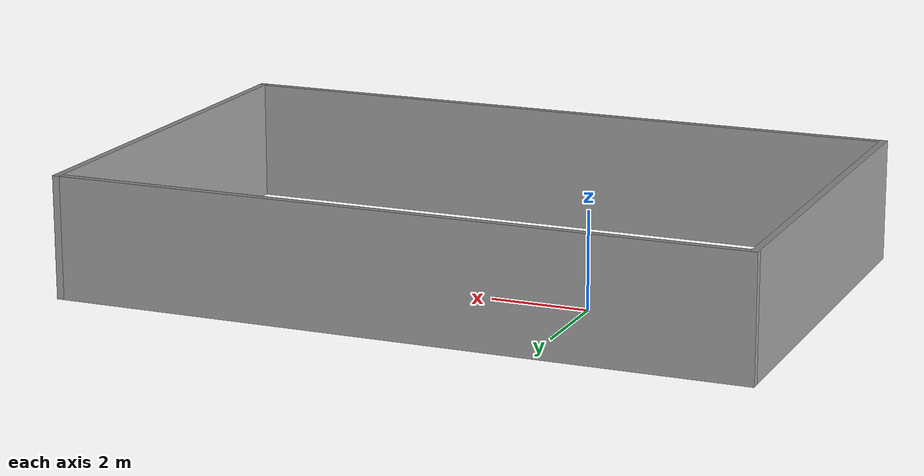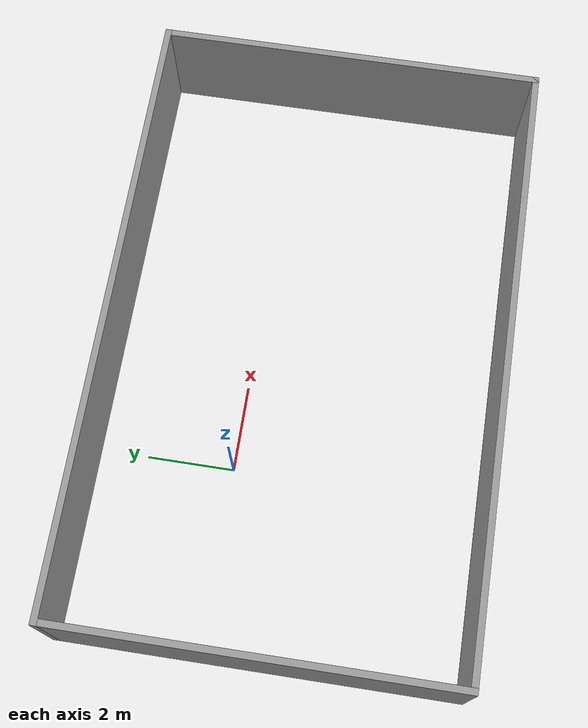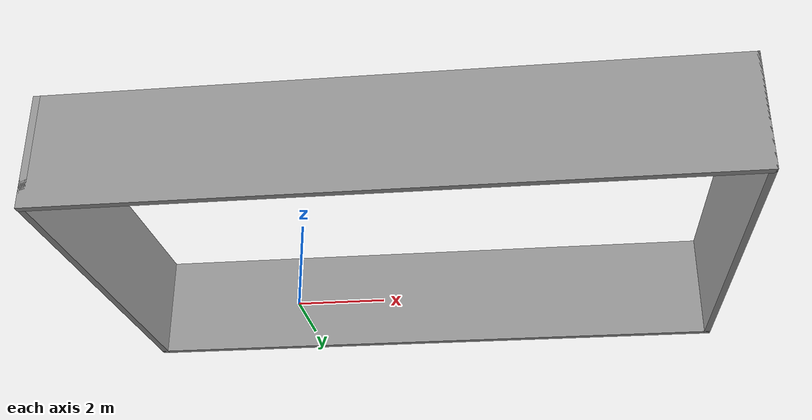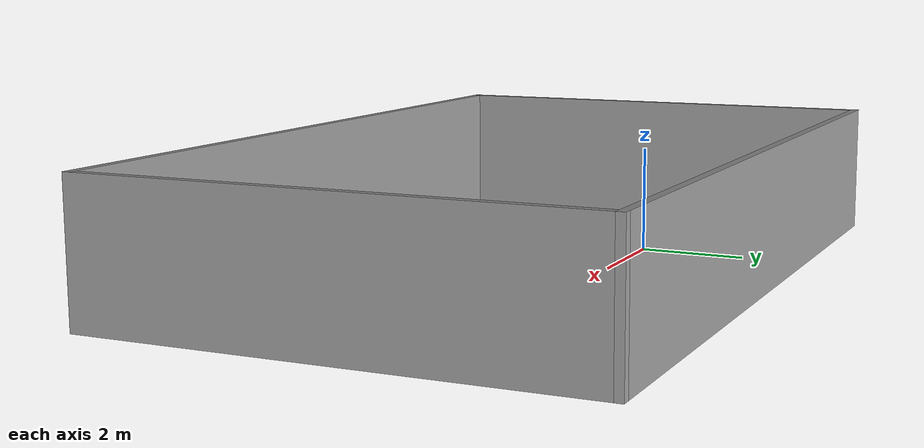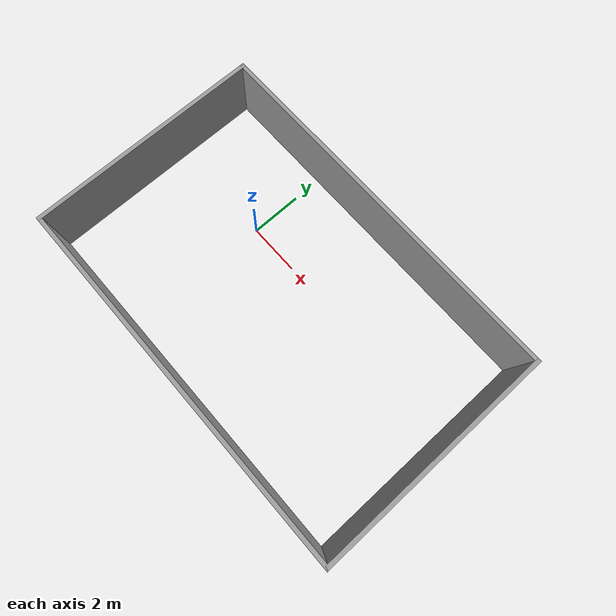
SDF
<?xml version='1.0'?>
<sdf version='1.7'>
  <model name='try1'>
    <pose>2.76609 -1.24978 0 0 -0 0</pose>
    <link name='Wall_10'>
      <collision name='Wall_10_Collision'>
        <geometry>
          <box>
            <size>14.25 0.15 2.5</size>
          </box>
        </geometry>
        <pose>0 0 1.25 0 -0 0</pose>
      </collision>
      <visual name='Wall_10_Visual'>
        <pose>0 0 1.25 0 -0 0</pose>
        <geometry>
          <box>
            <size>14.25 0.15 2.5</size>
          </box>
        </geometry>
        <material>
          <script>
            <uri>file://media/materials/scripts/gazebo.material</uri>
            <name>Gazebo/Grey</name>
          </script>
          <ambient>1 1 1 1</ambient>
        </material>
        <meta>
          <layer>0</layer>
        </meta>
      </visual>
      <pose>0 4.425 0 0 -0 3.14159</pose>
    </link>
    <link name='Wall_11'>
      <collision name='Wall_11_Collision'>
        <geometry>
          <box>
            <size>9 0.15 2.5</size>
          </box>
        </geometry>
        <pose>0 0 1.25 0 -0 0</pose>
      </collision>
      <visual name='Wall_11_Visual'>
        <pose>0 0 1.25 0 -0 0</pose>
        <geometry>
          <box>
            <size>9 0.15 2.5</size>
          </box>
        </geometry>
        <material>
          <script>
            <uri>file://media/materials/scripts/gazebo.material</uri>
            <name>Gazebo/Grey</name>
          </script>
          <ambient>1 1 1 1</ambient>
        </material>
        <meta>
          <layer>0</layer>
        </meta>
      </visual>
      <pose>-7.05 -0 0 0 -0 -1.5708</pose>
    </link>
    <link name='Wall_8'>
      <collision name='Wall_8_Collision'>
        <geometry>
          <box>
            <size>14.25 0.15 2.5</size>
          </box>
        </geometry>
        <pose>0 0 1.25 0 -0 0</pose>
      </collision>
      <visual name='Wall_8_Visual'>
        <pose>0 0 1.25 0 -0 0</pose>
        <geometry>
          <box>
            <size>14.25 0.15 2.5</size>
          </box>
        </geometry>
        <material>
          <script>
            <uri>file://media/materials/scripts/gazebo.material</uri>
            <name>Gazebo/Grey</name>
          </script>
          <ambient>1 1 1 1</ambient>
        </material>
        <meta>
          <layer>0</layer>
        </meta>
      </visual>
      <pose>0 -4.425 0 0 -0 0</pose>
    </link>
    <link name='Wall_9'>
      <collision name='Wall_9_Collision'>
        <geometry>
          <box>
            <size>9 0.15 2.5</size>
          </box>
        </geometry>
        <pose>0 0 1.25 0 -0 0</pose>
      </collision>
      <visual name='Wall_9_Visual'>
        <pose>0 0 1.25 0 -0 0</pose>
        <geometry>
          <box>
            <size>9 0.15 2.5</size>
          </box>
        </geometry>
        <material>
          <script>
            <uri>file://media/materials/scripts/gazebo.material</uri>
            <name>Gazebo/Grey</name>
          </script>
          <ambient>1 1 1 1</ambient>
        </material>
        <meta>
          <layer>0</layer>
        </meta>
      </visual>
      <pose>7.05 -0 0 0 -0 1.5708</pose>
    </link>
    <static>1</static>
  </model>
</sdf>
